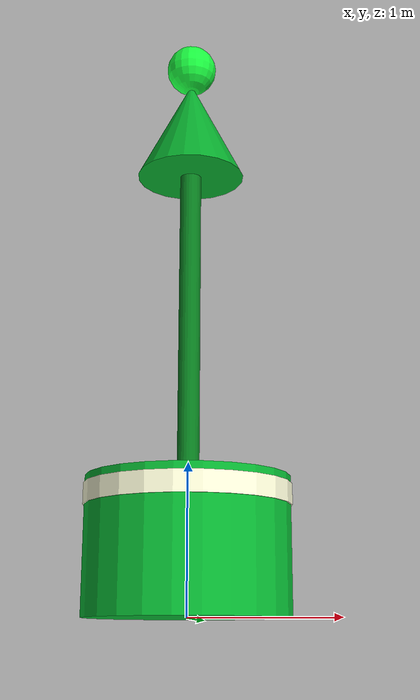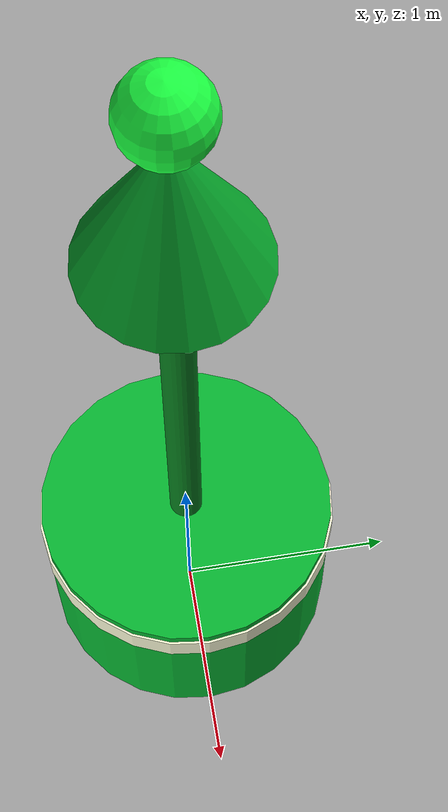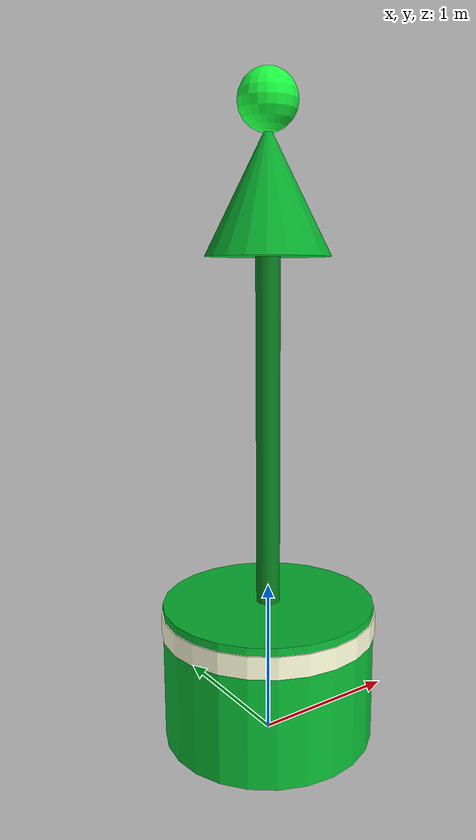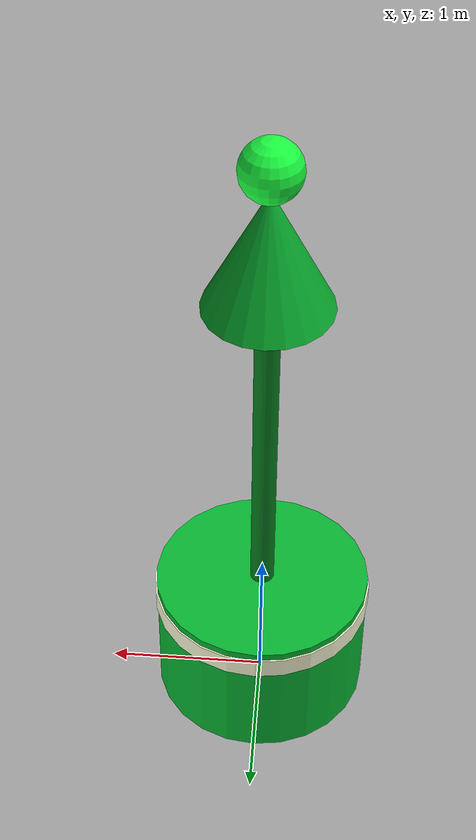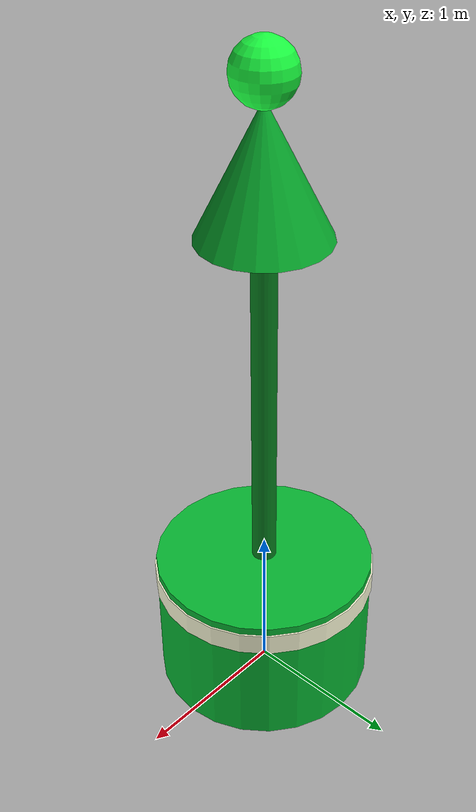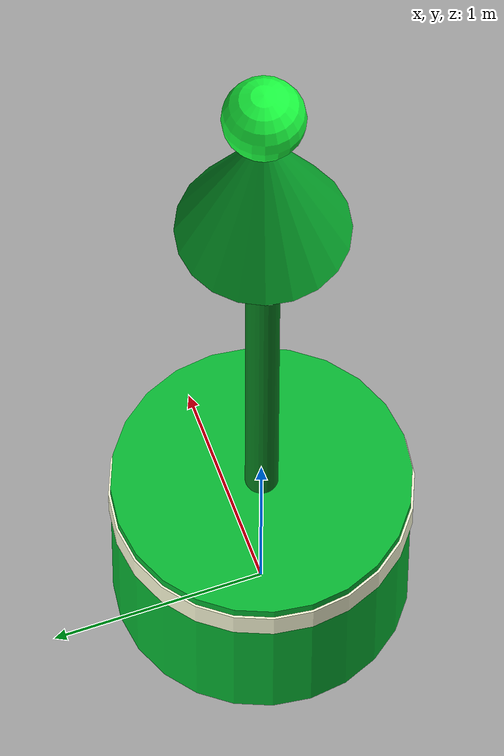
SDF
<?xml version="1.0"?>
<sdf version="1.10">
  <model name="green_channel_buoy">
    <link name="body">
      <inertial><mass>140</mass><inertia><ixx>65</ixx><iyy>65</iyy><izz>22</izz></inertia></inertial>
      <collision name="float_collision"><pose>0 0 0.45 0 0 0</pose><geometry><cylinder><radius>0.65</radius><length>0.9</length></cylinder></geometry></collision>
      <collision name="mast_collision"><pose>0 0 2.15 0 0 0</pose><geometry><cylinder><radius>0.1</radius><length>2.7</length></cylinder></geometry></collision>
      <visual name="float"><pose>0 0 0.45 0 0 0</pose><geometry><cylinder><radius>0.68</radius><length>0.9</length></cylinder></geometry><material><ambient>0.02 0.42 0.12 1</ambient><diffuse>0.03 0.72 0.2 1</diffuse><specular>0.2 0.3 0.2 1</specular></material></visual>
      <visual name="reflective_band"><pose>0 0 0.78 0 0 0</pose><geometry><cylinder><radius>0.69</radius><length>0.14</length></cylinder></geometry><material><ambient>0.85 0.88 0.75 1</ambient><diffuse>1 1 0.86 1</diffuse><emissive>0.15 0.15 0.1 1</emissive></material></visual>
      <visual name="mast"><pose>0 0 2.15 0 0 0</pose><geometry><cylinder><radius>0.075</radius><length>2.7</length></cylinder></geometry><material><ambient>0.02 0.25 0.07 1</ambient><diffuse>0.03 0.5 0.12 1</diffuse></material></visual>
      <visual name="topmark"><pose>0 0 3.45 0 0 0</pose><geometry><cone><radius>0.38</radius><length>0.75</length></cone></geometry><material><ambient>0.02 0.36 0.1 1</ambient><diffuse>0.03 0.68 0.18 1</diffuse></material></visual>
      <visual name="lantern"><pose>0 0 3.95 0 0 0</pose><geometry><sphere><radius>0.18</radius></sphere></geometry><material><ambient>0.08 0.8 0.2 1</ambient><diffuse>0.1 1 0.25 1</diffuse><emissive>0.05 0.8 0.16 1</emissive></material></visual>
      <light name="green_light" type="point"><pose>0 0 3.95 0 0 0</pose><cast_shadows>false</cast_shadows><intensity>1.4</intensity><diffuse>0.08 1 0.22 1</diffuse><specular>0.1 1 0.3 1</specular><attenuation><range>28</range><constant>0.7</constant><linear>0.04</linear><quadratic>0.002</quadratic></attenuation></light>
    </link>
    <plugin filename="libBoatWaveFollower.so" name="gz::sim::systems::BoatWaveFollower"><mean_z>0</mean_z><heave_amplitude>0.08</heave_amplitude><roll_amplitude>0.045</roll_amplitude><pitch_amplitude>0.038</pitch_amplitude><primary_frequency>0.9</primary_frequency><secondary_frequency>1.45</secondary_frequency><wave_number_x>0.2</wave_number_x><wave_number_y>0.16</wave_number_y></plugin>
  </model>
</sdf>
